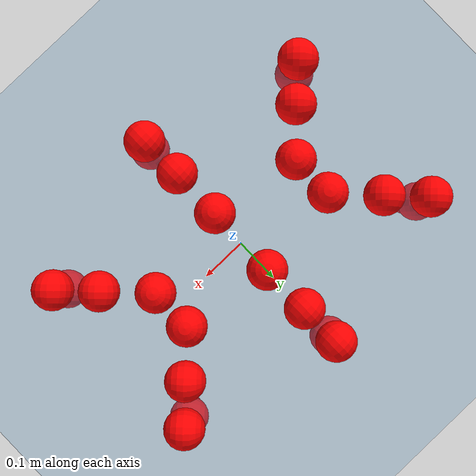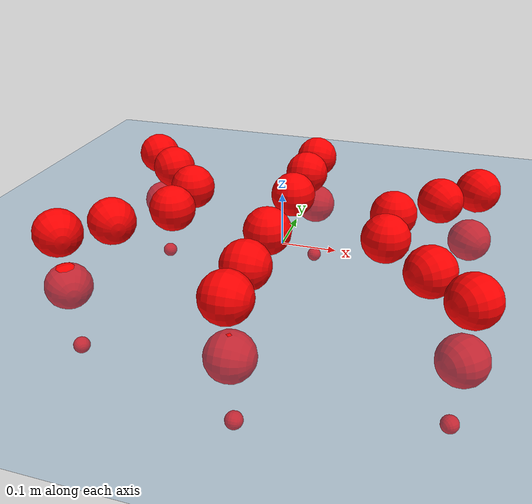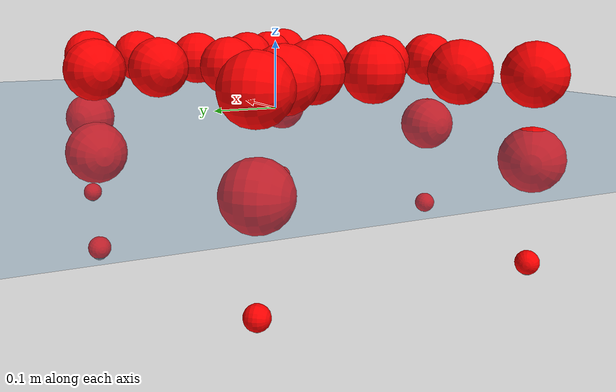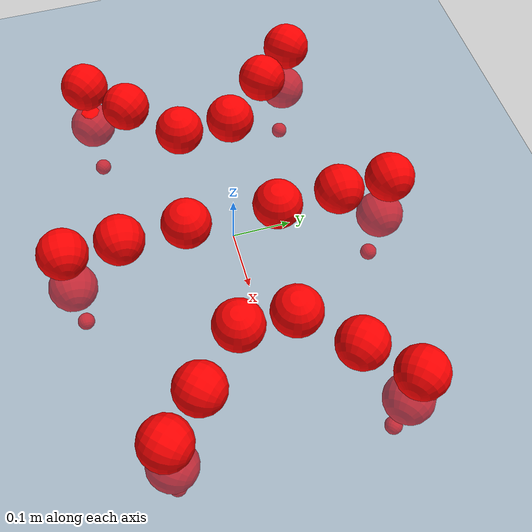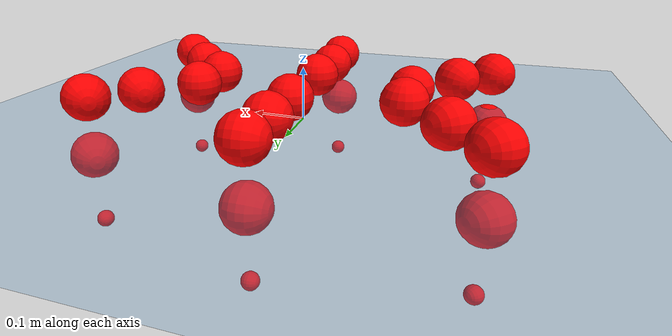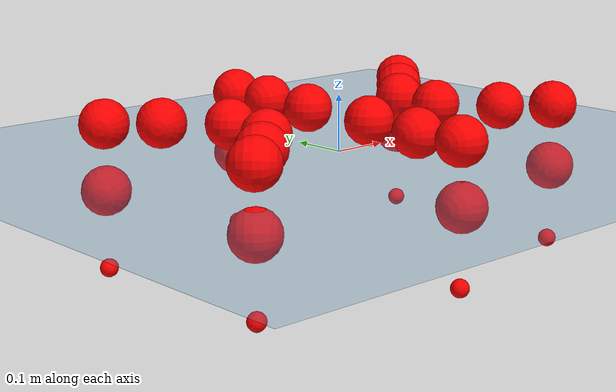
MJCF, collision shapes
<mujoco model="Golem">
  <compiler angle="radian" assetdir="assets" balanceinertia="true" inertiafromgeom="false"/>

  <option timestep="0.005" density="1.2" viscosity="2e-05"/>

  <size nkey="1"/>

  <visual>
    <quality shadowsize="8192"/>
    <map shadowclip="0.5"/>
  </visual>

  <default>
    <default class="/">
      <joint armature="0.01" damping="0.01" frictionloss="0.01"/>
      <geom contype="0" conaffinity="0" group="1" solref="-1000 -80"/>
      <site size="0.01 0.005 0.005" group="5"/>
      <general forcelimited="true" biastype="affine" gainprm="25" biasprm="0 -25 -0.5"/>
      <default class="visual">
        <geom type="mesh" group="2"/>
      </default>
      <default class="collision">
        <geom group="3"/>
      </default>
      <default class="foot">
        <geom size="0.01 0 0" condim="6" group="4" priority="1" solimp="0.015 1 0.01"/>
      </default>
      <default class="reward_collision_sphere">
        <geom group="5" rgba="1 0 0 1"/>
      </default>
    </default>
  </default>

  <asset>
    <texture type="skybox" colorspace="auto" name="//unnamed_texture_0" builtin="gradient" rgb1="0.95 0.95 0.95" rgb2="0.95 0.95 0.95" width="100" height="600"/>
    <texture type="2d" colorspace="auto" name="texplane" builtin="checker" rgb1="0.345 0.575 0.748" rgb2="0.345 0.575 0.748" markrgb="1 1 1" width="512" height="512"/>
    <material name="MatPlane" class="/" texture="texplane" texuniform="true" texrepeat="2 2" specular="0.9"/>
    <mesh name="body" class="/" file="body.stl" scale="0.001 0.001 0.001"/>
    <mesh name="coxa" class="/" file="coxa.stl" scale="0.001 0.001 0.001"/>
    <mesh name="femur" class="/" file="femur.stl" scale="0.001 0.001 0.001"/>
    <mesh name="tibia" class="/" file="tibia.stl" scale="0.001 0.001 0.001"/>
    <mesh name="tarsus" class="/" file="tarsus.stl" scale="0.001 0.001 0.001"/>
  </asset>

  <worldbody>
    <geom name="floor" class="/" size="100 100 0.125" type="plane" group="0" material="MatPlane"/>
    <light name="toplight_shadow" class="/" pos="0 0 5" dir="0.0990148 0.0990148 -0.990148" type="directional" ambient="0.04 0.04 0.04" diffuse="0.55 0.55 0.55" specular="0.12 0.12 0.12"/>
    <light name="toplight_fill" class="/" pos="0 0 5" dir="0.0990148 0.0990148 -0.990148" type="directional" castshadow="false" ambient="0.04 0.04 0.04" diffuse="0.3 0.3 0.3" specular="0.08 0.08 0.08"/>
    <body name="trunk" pos="-0.00130263 0.000177719 -0.00023418" quat="1 3.58294e-05 0.000263873 0.000229563">
      <inertial pos="0.000937857 0.000863619 -0.00488583" quat="0.999918 -0.00991947 -0.00799416 0.000935662" mass="4.28125" diaginertia="0.0308279 0.00485355 0.0121524"/>
      <joint name="//unnamed_joint_0" type="free"/>
      <geom name="//unnamed_geom_1" class="/" pos="0 0 0.0666145" quat="1 0 0 0" type="mesh" rgba="0.9 0.9 0.9 1" mesh="body"/>
      <site name="imu" class="/" pos="0.161854 0.0043679 0.104115" size="0.0105227"/>
      <camera name="track" class="/" pos="0 -1.73341 0" quat="0.707107 0.707107 0 0" mode="trackcom"/>
      <camera name="ego_camera" class="/" pos="0.162404 0 0.104085" quat="-0.5 -0.5 0.5 0.5"/>
      <body name="coxa_RR" pos="-0.222089 -0.0700325 0.0660266" quat="0.382444 5.0332e-05 -0.00017629 -0.923979">
        <inertial pos="0.00064524 -0.000232441 0.000673467" quat="0.999987 0.00330864 -0.00192021 0.00336855" mass="0.22863" diaginertia="0.0306222 0.00475295 0.0119666"/>
        <joint name="coxa_joint_RR" class="/" pos="0 0 0" axis="-9.28183e-05 -4.59574e-05 -1" range="-3.1332 3.18995" armature="0.0105394" damping="0.0143489" frictionloss="0.0102209"/>
        <geom name="//unnamed_geom_2" class="/" type="mesh" rgba="0.2 0.2 0.2 1" mesh="coxa"/>
        <geom name="//unnamed_geom_3" class="reward_collision_sphere" size="0.0420909" pos="-0.0374778 0 0"/>
        <body name="femur_RR" pos="0.0740308 0.00238212 0.00239587" quat="0.499914 -0.499769 0.500096 0.500221">
          <inertial pos="0.000509741 0.00247643 0.0026237" quat="0.999989 -0.00465 0.000114063 -0.000464822" mass="0.233088" diaginertia="0.0312525 0.00486954 0.012681"/>
          <joint name="femur_joint_RR" class="/" pos="0 0 0" axis="0.00310918 0.00318475 -0.99999" range="-3.15651 3.1387" armature="0.0100225" damping="0.0121666" frictionloss="0.0119129"/>
          <geom name="//unnamed_geom_4" class="/" type="mesh" rgba="0.9 0.9 0.9 1" mesh="femur"/>
          <geom name="//unnamed_geom_5" class="reward_collision_sphere" size="0.0420909"/>
          <body name="tibia_RR" pos="0.000575902 -0.0917317 -0.00244685" quat="-4.01757e-05 1 -0.000157028 -8.2886e-05">
            <inertial pos="0.000383307 -0.00227283 0.000817372" quat="1 0.00024489 0.000152172 -0.000204146" mass="0.231779" diaginertia="0.0305389 0.00489389 0.0121993"/>
            <joint name="tibia_joint_RR" class="/" pos="0 0 0" axis="0.00019335 -0.00149694 0.999999" range="-3.14087 3.13794" armature="0.0104826" damping="0.0189449" frictionloss="0.0100115"/>
            <geom name="//unnamed_geom_6" class="/" type="mesh" rgba="0.2 0.2 0.2 1" mesh="tibia"/>
            <geom name="//unnamed_geom_7" class="reward_collision_sphere" size="0.0420909"/>
            <body name="tarsus_RR" pos="0.107028 0.000712197 0.000172369" quat="1 9.84662e-06 1.92431e-05 1.15353e-05">
              <inertial pos="0.074537 -0.000153396 -0.000266801" quat="0.499507 0.498217 0.501522 0.500748" mass="0.239308" diaginertia="0.0315586 0.00498504 0.0121725"/>
              <joint name="tarsus_joint_RR" class="/" pos="0 0 0" axis="0.00101278 0.00226001 0.999997" range="-3.19239 3.19098" armature="0.0107354" damping="0.00149177" frictionloss="0.0107388"/>
              <geom name="//unnamed_geom_8" class="/" type="mesh" rgba="0.9 0.9 0.9 1" mesh="tarsus"/>
              <geom name="foot_1" class="foot" size="0.0110205" pos="0.139917 0 0" quat="0 -0.707107 0 0.707107"/>
              <geom name="//unnamed_geom_10" class="reward_collision_sphere" size="0.0420909"/>
              <geom name="//unnamed_geom_11" class="reward_collision_sphere" size="0.0157841" pos="0.134295 0 0"/>
              <site name="foot_1" class="foot" pos="0.139917 0 0" quat="0 -0.707107 0 0.707107" size="0.0105227"/>
            </body>
          </body>
        </body>
      </body>
      <body name="coxa_RM" pos="-0.00264779 -0.115963 0.0667112" quat="0.707123 1.48679e-05 -8.6947e-05 -0.707091">
        <inertial pos="0.000494863 -0.000608126 0.00121437" quat="0.999914 0.00244254 -0.00894698 0.00930855" mass="0.237473" diaginertia="0.0308101 0.00488863 0.0124775"/>
        <joint name="coxa_joint_RM" class="/" pos="0 0 0" axis="-0.00291123 0.00329377 -0.99999" range="-3.12098 3.12539" armature="0.01034" damping="0.00836886" frictionloss="0.0106629"/>
        <geom name="//unnamed_geom_12" class="/" type="mesh" rgba="0.2 0.2 0.2 1" mesh="coxa"/>
        <geom name="//unnamed_geom_13" class="reward_collision_sphere" size="0.0420909" pos="-0.0374778 0 0"/>
        <body name="femur_RM" pos="0.0734027 -0.000472911 -0.00312824" quat="0.499124 -0.500118 0.499911 0.500846">
          <inertial pos="-0.0026017 -0.000684736 -0.00264203" quat="1 -9.20881e-05 -0.000137983 0.000260285" mass="0.239753" diaginertia="0.0305519 0.00490487 0.0122133"/>
          <joint name="femur_joint_RM" class="/" pos="0 0 0" axis="-0.00191131 -0.00133214 -0.999997" range="-3.16105 3.18975" armature="0.0101855" damping="0.0119501" frictionloss="0.00925578"/>
          <geom name="//unnamed_geom_14" class="/" type="mesh" rgba="0.9 0.9 0.9 1" mesh="femur"/>
          <geom name="//unnamed_geom_15" class="reward_collision_sphere" size="0.0420909"/>
          <body name="tibia_RM" pos="-0.00133401 -0.0923472 0.00240312" quat="4.46211e-05 1 -1.28957e-05 1.64384e-05">
            <inertial pos="-5.88124e-05 -0.00131767 -0.000168198" quat="1 1.35025e-06 -3.43794e-07 -2.62037e-06" mass="0.232316" diaginertia="0.0307032 0.00489132 0.0120832"/>
            <joint name="tibia_joint_RM" class="/" pos="0 0 0" axis="0.0116734 -0.00295306 0.999928" range="-3.15294 3.09295" armature="0.0109413" damping="0" frictionloss="0.0104139"/>
            <geom name="//unnamed_geom_16" class="/" type="mesh" rgba="0.2 0.2 0.2 1" mesh="tibia"/>
            <geom name="//unnamed_geom_17" class="reward_collision_sphere" size="0.0420909"/>
            <body name="tarsus_RM" pos="0.106902 0.00213522 -0.00222146" quat="1 -0.00020671 0.000139653 0.000166828">
              <inertial pos="0.0762232 0.000437374 0.00158023" quat="0.497431 0.497603 0.507556 0.497334" mass="0.230683" diaginertia="0.0304559 0.0048453 0.011687"/>
              <joint name="tarsus_joint_RM" class="/" pos="0 0 0" axis="-0.00173247 -0.00299552 0.999994" range="-3.18634 3.08632" armature="0.0104218" damping="0.00321686" frictionloss="0.0110799"/>
              <geom name="//unnamed_geom_18" class="/" type="mesh" rgba="0.9 0.9 0.9 1" mesh="tarsus"/>
              <geom name="foot_2" class="foot" size="0.0102384" pos="0.139917 0 0" quat="0 -0.707107 0 0.707107"/>
              <geom name="//unnamed_geom_20" class="reward_collision_sphere" size="0.0420909"/>
              <geom name="//unnamed_geom_21" class="reward_collision_sphere" size="0.0157841" pos="0.134295 0 0"/>
              <site name="foot_2" class="foot" pos="0.139917 0 0" quat="0 -0.707107 0 0.707107" size="0.0105227"/>
            </body>
          </body>
        </body>
      </body>
      <body name="coxa_RF" pos="0.220577 -0.0719488 0.0649945" quat="0.923925 8.44147e-06 -1.68273e-05 -0.382572">
        <inertial pos="-0.000478054 -0.00262711 -0.000659116" quat="0.999987 -0.00298794 0.0040056 -0.000938731" mass="0.237916" diaginertia="0.0310052 0.00487298 0.0121646"/>
        <joint name="coxa_joint_RF" class="/" pos="0 0 0" axis="0.000561813 0.000607226 -1" range="-3.14107 3.16596" armature="0.010517" damping="0" frictionloss="0.010653"/>
        <geom name="//unnamed_geom_22" class="/" type="mesh" rgba="0.2 0.2 0.2 1" mesh="coxa"/>
        <geom name="//unnamed_geom_23" class="reward_collision_sphere" size="0.0420909" pos="-0.0374778 0 0"/>
        <body name="femur_RF" pos="0.0763141 -0.000437417 -0.00246784" quat="0.500046 -0.500076 0.49993 0.499948">
          <inertial pos="-0.000441786 -9.79881e-05 0.00207422" quat="0.999986 -0.00349293 -0.00247978 0.00303188" mass="0.229284" diaginertia="0.030633 0.00475277 0.0121935"/>
          <joint name="femur_joint_RF" class="/" pos="0 0 0" axis="5.57978e-05 0.000960139 -1" range="-3.08918 3.11865" armature="0.0103782" damping="0.0103302" frictionloss="0.0096499"/>
          <geom name="//unnamed_geom_24" class="/" type="mesh" rgba="0.9 0.9 0.9 1" mesh="femur"/>
          <geom name="//unnamed_geom_25" class="reward_collision_sphere" size="0.0420909"/>
          <body name="tibia_RF" pos="-0.00272281 -0.0925006 -0.000628849" quat="4.00194e-05 1 -6.01816e-05 3.56967e-05">
            <inertial pos="0.00153861 5.53584e-05 -0.000129929" quat="0.999914 -0.0105828 -0.0026543 -0.00732898" mass="0.238808" diaginertia="0.0298849 0.00486636 0.0123101"/>
            <joint name="tibia_joint_RF" class="/" pos="0 0 0" axis="0.00592112 -0.00413654 0.999974" range="-3.14075 3.13503" armature="0.0100419" damping="0.00333945" frictionloss="0.0103533"/>
            <geom name="//unnamed_geom_26" class="/" type="mesh" rgba="0.2 0.2 0.2 1" mesh="tibia"/>
            <geom name="//unnamed_geom_27" class="reward_collision_sphere" size="0.0420909"/>
            <body name="tarsus_RF" pos="0.11129 -0.00117151 -0.00219802" quat="1 -0.000236401 -7.76553e-05 -0.000130969">
              <inertial pos="0.0748865 -0.00228319 -0.000650512" quat="0.501447 0.502969 0.497092 0.49847" mass="0.224566" diaginertia="0.0302073 0.00474702 0.0122015"/>
              <joint name="tarsus_joint_RF" class="/" pos="0 0 0" axis="0.00840793 -0.00890164 0.999925" range="-3.1758 3.13946" armature="0.0105563" damping="0.0204757" frictionloss="0.0110551"/>
              <geom name="//unnamed_geom_28" class="/" type="mesh" rgba="0.9 0.9 0.9 1" mesh="tarsus"/>
              <geom name="foot_3" class="foot" size="0.0101893" pos="0.139917 0 0" quat="0 -0.707107 0 0.707107"/>
              <geom name="//unnamed_geom_30" class="reward_collision_sphere" size="0.0420909"/>
              <geom name="//unnamed_geom_31" class="reward_collision_sphere" size="0.0157841" pos="0.134295 0 0"/>
              <site name="foot_3" class="foot" pos="0.139917 0 0" quat="0 -0.707107 0 0.707107" size="0.0105227"/>
            </body>
          </body>
        </body>
      </body>
      <body name="coxa_LR" pos="-0.22152 0.0751968 0.0691259" quat="0.382588 -0.00014541 -0.000120868 0.923919">
        <inertial pos="0.000797742 0.000566986 0.00277925" quat="1 0.000673883 0.000205588 -0.000195962" mass="0.233608" diaginertia="0.0300877 0.00481479 0.0116976"/>
        <joint name="coxa_joint_LR" class="/" pos="0 0 0" axis="0.00168575 -0.00136091 -0.999998" range="-3.13819 3.12203" armature="0.0107377" damping="0" frictionloss="0.00916537"/>
        <geom name="//unnamed_geom_32" class="/" type="mesh" rgba="0.2 0.2 0.2 1" mesh="coxa"/>
        <geom name="//unnamed_geom_33" class="reward_collision_sphere" size="0.0420909" pos="-0.0374778 0 0"/>
        <body name="femur_LR" pos="0.0757234 -0.00308929 -0.000135983" quat="0.49966 -0.50044 0.499928 0.499971">
          <inertial pos="0.00230166 5.99268e-05 0.00144966" quat="0.999992 0.0030156 0.00190196 0.00160773" mass="0.225145" diaginertia="0.0302252 0.00488535 0.0122203"/>
          <joint name="femur_joint_LR" class="/" pos="0 0 0" axis="-0.00396277 -0.00331831 0.999987" range="-3.19324 3.08891" armature="0.00919712" damping="0" frictionloss="0.0106124"/>
          <geom name="//unnamed_geom_34" class="/" type="mesh" rgba="0.9 0.9 0.9 1" mesh="femur"/>
          <geom name="//unnamed_geom_35" class="reward_collision_sphere" size="0.0420909"/>
          <body name="tibia_LR" pos="0.00212102 -0.0951077 -0.0007025" quat="-5.92649e-05 1 -2.4141e-05 7.02307e-05">
            <inertial pos="4.28321e-05 -0.00213392 3.94418e-05" quat="0.999999 -0.000105351 0.000456022 0.000891199" mass="0.237305" diaginertia="0.0298659 0.00499688 0.0119983"/>
            <joint name="tibia_joint_LR" class="/" pos="0 0 0" axis="0.00105688 -0.0131118 -0.999913" range="-3.14947 3.09497" armature="0.0109728" damping="0.000990945" frictionloss="0.010416"/>
            <geom name="//unnamed_geom_36" class="/" type="mesh" rgba="0.2 0.2 0.2 1" mesh="tibia"/>
            <geom name="//unnamed_geom_37" class="reward_collision_sphere" size="0.0420909"/>
            <body name="tarsus_LR" pos="0.112837 0.000442297 -0.000991111" quat="0.999999 9.19176e-05 -0.000728188 0.00107535">
              <inertial pos="0.0735018 -0.00165244 0.00120917" quat="0.499892 0.499425 0.500458 0.500225" mass="0.234351" diaginertia="0.0303447 0.00473709 0.0122907"/>
              <joint name="tarsus_joint_LR" class="/" pos="0 0 0" axis="-0.000293615 0.000730368 -1" range="-3.14847 3.15113" armature="0.0103047" damping="0.0260618" frictionloss="0.0117851"/>
              <geom name="//unnamed_geom_38" class="/" type="mesh" rgba="0.9 0.9 0.9 1" mesh="tarsus"/>
              <geom name="foot_4" class="foot" size="0.0106787" pos="0.139917 0 0" quat="0.707107 0 -0.707107 0"/>
              <geom name="//unnamed_geom_40" class="reward_collision_sphere" size="0.0420909"/>
              <geom name="//unnamed_geom_41" class="reward_collision_sphere" size="0.0157841" pos="0.134295 0 0"/>
              <site name="foot_4" class="foot" pos="0.139917 0 0" quat="0.707107 0 -0.707107 0" size="0.0105227"/>
            </body>
          </body>
        </body>
      </body>
      <body name="coxa_LM" pos="0.000211825 0.114007 0.065782" quat="0.70696 0.000299554 8.2393e-05 0.707254">
        <inertial pos="0.00265603 0.000125699 -0.00019923" quat="0.999992 -0.00295913 -0.00129648 0.00223419" mass="0.226519" diaginertia="0.0305205 0.00475313 0.0120209"/>
        <joint name="coxa_joint_LM" class="/" pos="0 0 0" axis="0.0039006 0.00161488 -0.999991" range="-3.14196 3.13527" armature="0.0107427" damping="0" frictionloss="0.0100907"/>
        <geom name="//unnamed_geom_42" class="/" type="mesh" rgba="0.2 0.2 0.2 1" mesh="coxa"/>
        <geom name="//unnamed_geom_43" class="reward_collision_sphere" size="0.0420909" pos="-0.0374778 0 0"/>
        <body name="femur_LM" pos="0.070183 0.000267019 0.00130207" quat="0.500025 -0.500112 0.499861 0.500002">
          <inertial pos="0.000928768 -0.000390449 -0.000446879" quat="0.999989 0.00342005 -0.002802 -0.00157604" mass="0.239331" diaginertia="0.0299264 0.00495542 0.0127765"/>
          <joint name="femur_joint_LM" class="/" pos="0 0 0" axis="0.00274562 0.0151768 0.999881" range="-3.08927 3.14059" armature="0.0112138" damping="0" frictionloss="0.0104901"/>
          <geom name="//unnamed_geom_44" class="/" type="mesh" rgba="0.9 0.9 0.9 1" mesh="femur"/>
          <geom name="//unnamed_geom_45" class="reward_collision_sphere" size="0.0420909"/>
          <body name="tibia_LM" pos="-3.31852e-05 -0.0906673 0.000280797" quat="-3.59839e-05 1 8.35227e-05 0.000241735">
            <inertial pos="-0.00252695 0.000256328 -0.000181957" quat="0.999989 -0.00067931 -0.00202429 -0.0041329" mass="0.231767" diaginertia="0.0306271 0.00495257 0.0123811"/>
            <joint name="tibia_joint_LM" class="/" pos="0 0 0" axis="0.00168522 -0.0016715 -0.999997" stiffness="0.00426575" range="-3.16133 3.14206" armature="0.00976814" damping="0.00301601" frictionloss="0.00914481"/>
            <geom name="//unnamed_geom_46" class="/" type="mesh" rgba="0.2 0.2 0.2 1" mesh="tibia"/>
            <geom name="//unnamed_geom_47" class="reward_collision_sphere" size="0.0420909"/>
            <body name="tarsus_LM" pos="0.113075 0.00074588 0.000316937" quat="1 -0.000121976 -5.98817e-05 -0.000433629">
              <inertial pos="0.0731314 -0.000364771 -0.000922555" quat="0.507472 0.497714 0.502174 0.492517" mass="0.230525" diaginertia="0.0297609 0.00488981 0.0119853"/>
              <joint name="tarsus_joint_LM" class="/" pos="0 0 0" axis="-0.00407385 0.00822396 -0.999958" stiffness="0.00272441" range="-3.10474 3.13853" armature="0.0100553" damping="0.0117834" frictionloss="0.0106013"/>
              <geom name="//unnamed_geom_48" class="/" type="mesh" rgba="0.9 0.9 0.9 1" mesh="tarsus"/>
              <geom name="foot_5" class="foot" size="0.0116409" pos="0.139917 0 0" quat="0.707107 0 -0.707107 0"/>
              <geom name="//unnamed_geom_50" class="reward_collision_sphere" size="0.0420909"/>
              <geom name="//unnamed_geom_51" class="reward_collision_sphere" size="0.0157841" pos="0.134295 0 0"/>
              <site name="foot_5" class="foot" pos="0.139917 0 0" quat="0.707107 0 -0.707107 0" size="0.0105227"/>
            </body>
          </body>
        </body>
      </body>
      <body name="coxa_LF" pos="0.221734 0.0730806 0.065637" quat="0.923881 -0.000184606 5.64625e-05 0.382679">
        <inertial pos="-7.45216e-05 -0.00251404 0.000442301" quat="0.999928 0.0105538 -0.00492839 0.00278384" mass="0.237607" diaginertia="0.0312254 0.0051143 0.0127548"/>
        <joint name="coxa_joint_LF" class="/" pos="0 0 0" axis="0.000294348 0.000211546 -1" range="-3.10665 3.13571" armature="0.0106838" damping="0.00942056" frictionloss="0.00940602"/>
        <geom name="//unnamed_geom_52" class="/" type="mesh" rgba="0.2 0.2 0.2 1" mesh="coxa"/>
        <geom name="//unnamed_geom_53" class="reward_collision_sphere" size="0.0420909" pos="-0.0374778 0 0"/>
        <body name="femur_LF" pos="0.0715424 -0.000424517 0.0016788" quat="0.499671 -0.500102 0.500043 0.500184">
          <inertial pos="-0.000307983 0.000897341 -0.00233885" quat="0.999986 0.0025024 0.00459547 0.000439437" mass="0.235573" diaginertia="0.0303767 0.00493912 0.0120473"/>
          <joint name="femur_joint_LF" class="/" pos="0 0 0" axis="0.00138402 0.00370065 0.999992" range="-3.12074 3.14098" armature="0.0111648" damping="0.0038783" frictionloss="0.010379"/>
          <geom name="//unnamed_geom_54" class="/" type="mesh" rgba="0.9 0.9 0.9 1" mesh="femur"/>
          <geom name="//unnamed_geom_55" class="reward_collision_sphere" size="0.0420909"/>
          <body name="tibia_LF" pos="0.000128737 -0.0946428 0.000505245" quat="0.000337498 1 -3.15911e-06 8.01782e-05">
            <inertial pos="0.00249605 0.00269822 0.00260453" quat="0.99999 0.00204764 0.00171197 -0.00347072" mass="0.234147" diaginertia="0.0307683 0.0049809 0.012692"/>
            <joint name="tibia_joint_LF" class="/" pos="0 0 0" axis="0.00183964 -0.00336891 -0.999993" stiffness="0.00142931" range="-3.11325 3.088" armature="0.011029" damping="0.00263919" frictionloss="0.00997372"/>
            <geom name="//unnamed_geom_56" class="/" type="mesh" rgba="0.2 0.2 0.2 1" mesh="tibia"/>
            <geom name="//unnamed_geom_57" class="reward_collision_sphere" size="0.0420909"/>
            <body name="tarsus_LF" pos="0.109785 0.00125835 -0.000941092" quat="1 -7.58973e-05 8.49869e-05 1.39398e-05">
              <inertial pos="0.0743395 0.00111682 0.00247083" quat="0.507339 0.493899 0.496269 0.502383" mass="0.235198" diaginertia="0.0315301 0.00490432 0.0126955"/>
              <joint name="tarsus_joint_LF" class="/" pos="0 0 0" axis="0.00019833 0.00154761 -0.999999" range="-3.18345 3.08655" armature="0.0108068" damping="0.0174094" frictionloss="0.0108021"/>
              <geom name="//unnamed_geom_58" class="/" type="mesh" rgba="0.9 0.9 0.9 1" mesh="tarsus"/>
              <geom name="foot_6" class="foot" size="0.0108855" pos="0.139917 0 0" quat="0.707107 0 -0.707107 0"/>
              <geom name="//unnamed_geom_60" class="reward_collision_sphere" size="0.0420909"/>
              <geom name="//unnamed_geom_61" class="reward_collision_sphere" size="0.0157841" pos="0.134295 0 0"/>
              <site name="foot_6" class="foot" pos="0.139917 0 0" quat="0.707107 0 -0.707107 0" size="0.0105227"/>
            </body>
          </body>
        </body>
      </body>
    </body>
  </worldbody>

  <contact>
    <pair class="/" geom1="floor" geom2="foot_1" name="//unnamed_contact_0"/>
    <pair class="/" geom1="floor" geom2="foot_2" name="//unnamed_contact_1"/>
    <pair class="/" geom1="floor" geom2="foot_3" name="//unnamed_contact_2"/>
    <pair class="/" geom1="floor" geom2="foot_4" name="//unnamed_contact_3"/>
    <pair class="/" geom1="floor" geom2="foot_5" name="//unnamed_contact_4"/>
    <pair class="/" geom1="floor" geom2="foot_6" name="//unnamed_contact_5"/>
  </contact>

  <actuator>
    <general name="coxa_joint_RR" class="/" joint="coxa_joint_RR" forcerange="-7.97688 7.97688" gainprm="26.7988" biasprm="0 -26.7988 -0.552485"/>
    <general name="femur_joint_RR" class="/" joint="femur_joint_RR" forcerange="-7.66945 7.66945" gainprm="26.7988" biasprm="0 -26.7988 -0.552485"/>
    <general name="tibia_joint_RR" class="/" joint="tibia_joint_RR" forcerange="-7.64318 7.64318" gainprm="26.7988" biasprm="0 -26.7988 -0.552485"/>
    <general name="tarsus_joint_RR" class="/" joint="tarsus_joint_RR" forcerange="-7.75832 7.75832" gainprm="26.7988" biasprm="0 -26.7988 -0.552485"/>
    <general name="coxa_joint_RM" class="/" joint="coxa_joint_RM" forcerange="-7.58802 7.58802" gainprm="26.7988" biasprm="0 -26.7988 -0.552485"/>
    <general name="femur_joint_RM" class="/" joint="femur_joint_RM" forcerange="-7.6743 7.6743" gainprm="26.7988" biasprm="0 -26.7988 -0.552485"/>
    <general name="tibia_joint_RM" class="/" joint="tibia_joint_RM" forcerange="-7.61698 7.61698" gainprm="26.7988" biasprm="0 -26.7988 -0.552485"/>
    <general name="tarsus_joint_RM" class="/" joint="tarsus_joint_RM" forcerange="-7.17823 7.17823" gainprm="26.7988" biasprm="0 -26.7988 -0.552485"/>
    <general name="coxa_joint_RF" class="/" joint="coxa_joint_RF" forcerange="-7.56613 7.56613" gainprm="26.7988" biasprm="0 -26.7988 -0.552485"/>
    <general name="femur_joint_RF" class="/" joint="femur_joint_RF" forcerange="-7.67008 7.67008" gainprm="26.7988" biasprm="0 -26.7988 -0.552485"/>
    <general name="tibia_joint_RF" class="/" joint="tibia_joint_RF" forcerange="-7.66312 7.66312" gainprm="26.7988" biasprm="0 -26.7988 -0.552485"/>
    <general name="tarsus_joint_RF" class="/" joint="tarsus_joint_RF" forcerange="-7.98302 7.98302" gainprm="26.7988" biasprm="0 -26.7988 -0.552485"/>
    <general name="coxa_joint_LR" class="/" joint="coxa_joint_LR" forcerange="-7.91918 7.91918" gainprm="26.7988" biasprm="0 -26.7988 -0.552485"/>
    <general name="femur_joint_LR" class="/" joint="femur_joint_LR" forcerange="-7.03756 7.03756" gainprm="26.7988" biasprm="0 -26.7988 -0.552485"/>
    <general name="tibia_joint_LR" class="/" joint="tibia_joint_LR" forcerange="-7.50665 7.50665" gainprm="26.7988" biasprm="0 -26.7988 -0.552485"/>
    <general name="tarsus_joint_LR" class="/" joint="tarsus_joint_LR" forcerange="-7.64172 7.64172" gainprm="26.7988" biasprm="0 -26.7988 -0.552485"/>
    <general name="coxa_joint_LM" class="/" joint="coxa_joint_LM" forcerange="-7.63782 7.63782" gainprm="26.7988" biasprm="0 -26.7988 -0.552485"/>
    <general name="femur_joint_LM" class="/" joint="femur_joint_LM" forcerange="-7.68322 7.68322" gainprm="26.7988" biasprm="0 -26.7988 -0.552485"/>
    <general name="tibia_joint_LM" class="/" joint="tibia_joint_LM" forcerange="-7.69992 7.69992" gainprm="26.7988" biasprm="0 -26.7988 -0.552485"/>
    <general name="tarsus_joint_LM" class="/" joint="tarsus_joint_LM" forcerange="-7.87037 7.87037" gainprm="26.7988" biasprm="0 -26.7988 -0.552485"/>
    <general name="coxa_joint_LF" class="/" joint="coxa_joint_LF" forcerange="-7.96243 7.96243" gainprm="26.7988" biasprm="0 -26.7988 -0.552485"/>
    <general name="femur_joint_LF" class="/" joint="femur_joint_LF" forcerange="-8.13742 8.13742" gainprm="26.7988" biasprm="0 -26.7988 -0.552485"/>
    <general name="tibia_joint_LF" class="/" joint="tibia_joint_LF" forcerange="-7.65715 7.65715" gainprm="26.7988" biasprm="0 -26.7988 -0.552485"/>
    <general name="tarsus_joint_LF" class="/" joint="tarsus_joint_LF" forcerange="-6.92449 6.92449" gainprm="26.7988" biasprm="0 -26.7988 -0.552485"/>
  </actuator>

  <sensor>
    <gyro site="imu" name="imu_angular_velocity"/>
    <velocimeter site="imu" name="imu_linear_velocity"/>
    <framelinvel objtype="site" objname="foot_1" name="foot_1_global_linear_velocity"/>
    <framelinvel objtype="site" objname="foot_2" name="foot_2_global_linear_velocity"/>
    <framelinvel objtype="site" objname="foot_3" name="foot_3_global_linear_velocity"/>
    <framelinvel objtype="site" objname="foot_4" name="foot_4_global_linear_velocity"/>
    <framelinvel objtype="site" objname="foot_5" name="foot_5_global_linear_velocity"/>
    <framelinvel objtype="site" objname="foot_6" name="foot_6_global_linear_velocity"/>
  </sensor>

  <keyframe>
    <key name="home" qpos="0 0 0.1457 1 0 0 0 0 0 0 0 0 0 0 0 0 0 0 0 0 0 0 0 0 0 0 0 0 0 0 0"/>
  </keyframe>
</mujoco>
